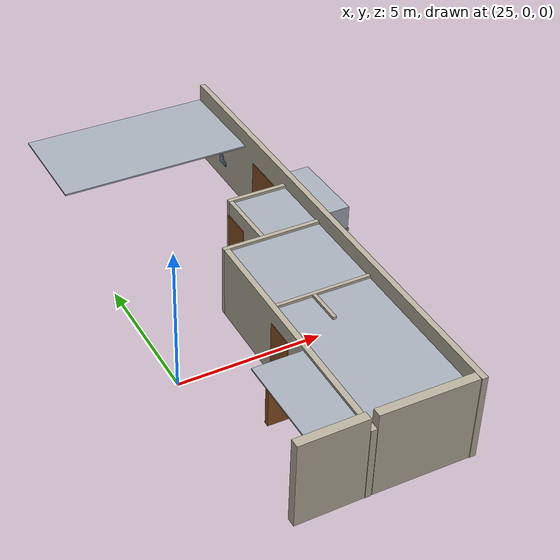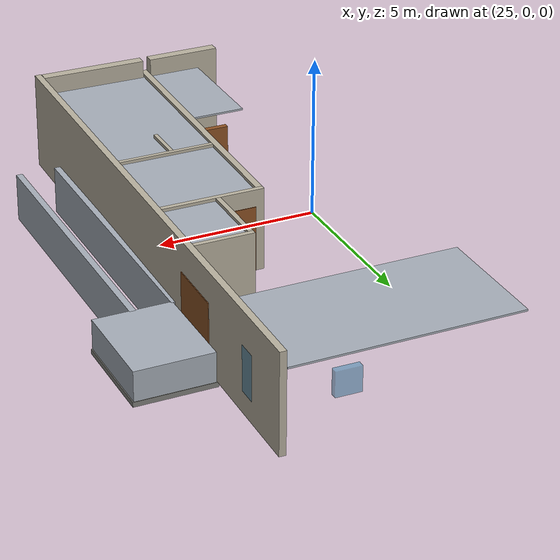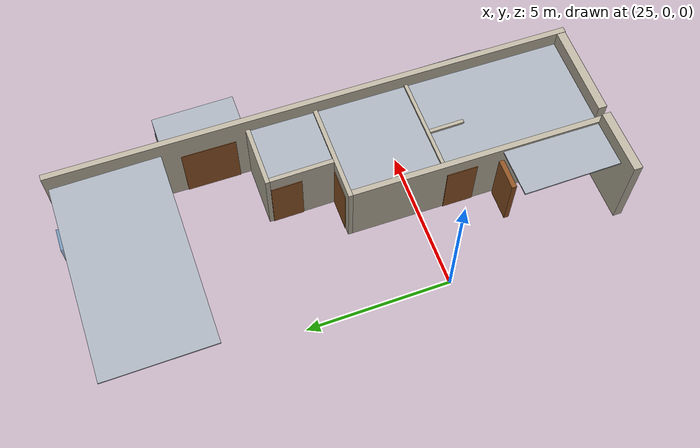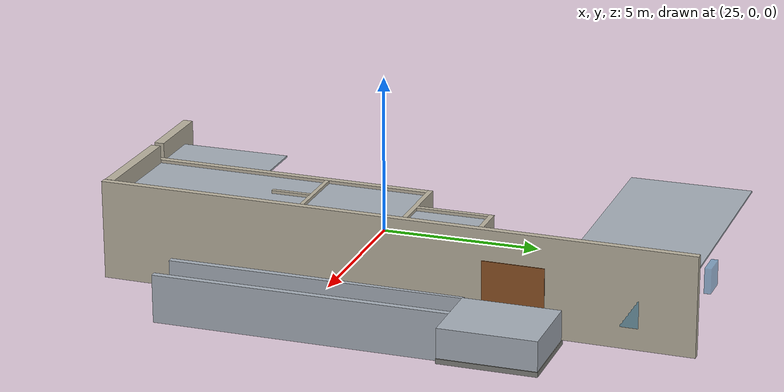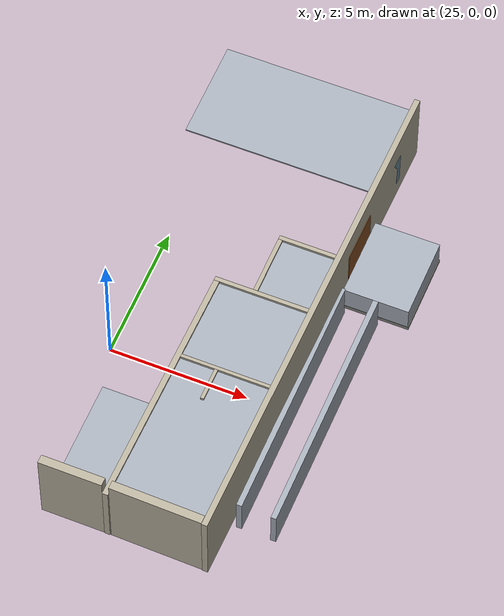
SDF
<sdf version="1.10">
 <world name="deltaseek_ifc_nominal">
  <model name="ifc_0KvanlNQrCphrCb4tAxkcE_f5de6fd0">
   <static>true</static>
   <pose>29.2424068 -1.41828877 1.2954 0 0 -1.57079633</pose>
   <link name="link">
    <collision name="collision">
     <geometry><box><size>1.20552254 0.123825 2.5908</size></box></geometry>
    </collision>
    <visual name="visual">
     <geometry><box><size>1.20552254 0.123825 2.5908</size></box></geometry>
     <material><ambient>0.72 0.69 0.62 1</ambient><diffuse>0.72 0.69 0.62 1</diffuse></material>
    </visual>
   </link>
  </model>
  <model name="ifc_0KvanlNQrCphrCb4tAxkex_9aa0b3fa">
   <static>true</static>
   <pose>29.5995059 -0.753615004 1.2954 0 0 3.14159265</pose>
   <link name="link">
    <collision name="collision">
     <geometry><box><size>3.28183331 0.123825 2.5908</size></box></geometry>
    </collision>
    <visual name="visual">
     <geometry><box><size>3.28183331 0.123825 2.5908</size></box></geometry>
     <material><ambient>0.72 0.69 0.62 1</ambient><diffuse>0.72 0.69 0.62 1</diffuse></material>
    </visual>
   </link>
  </model>
  <model name="ifc_0kOqgiFir1OwD68J2JXw_l_5ae3c16f">
   <static>true</static>
   <pose>31.4405101 6.19787652 1.0541 0 0 -1.58508899</pose>
   <link name="link">
    <collision name="collision"><geometry><box><size>1.8796 0.254 2.1082</size></box></geometry></collision>
    <visual name="visual">
     <geometry><box><size>1.8796 0.254 2.1082</size></box></geometry>
     <material><ambient>0.55 0.32 0.14 1</ambient><diffuse>0.55 0.32 0.14 1</diffuse></material>
    </visual>
   </link>
  </model>
  <model name="ifc_1abtvTofT8EB1v01F0DkHX_207af4a1">
   <static>true</static>
   <pose>29.2438592 3.64010209 1.2954 0 0 -1.57079633</pose>
   <link name="link">
    <collision name="collision"><geometry><box><size>2.19075 0.1524 2.5908</size></box></geometry></collision>
    <visual name="visual">
     <geometry><box><size>2.19075 0.1524 2.5908</size></box></geometry>
     <material><ambient>0.72 0.69 0.62 1</ambient><diffuse>0.72 0.69 0.62 1</diffuse></material>
    </visual>
   </link>
  </model>
  <model name="ifc_1abtvTofT8EB1v01F0DkJJ_802a1425">
   <static>true</static>
   <pose>29.5462416 2.46852709 1.2954 0 0 3.14159265</pose>
   <link name="link">
    <collision name="collision"><geometry><box><size>3.4808827 0.1524 2.5908</size></box></geometry></collision>
    <visual name="visual">
     <geometry><box><size>3.4808827 0.1524 2.5908</size></box></geometry>
     <material><ambient>0.72 0.69 0.62 1</ambient><diffuse>0.72 0.69 0.62 1</diffuse></material>
    </visual>
   </link>
  </model>
  <model name="ifc_1abtvTofT8EB1v01F0DkNK_24d141d2">
   <static>true</static>
   <pose>27.8371729 -2.07509683 1.2954 0 0 -1.58651771</pose>
   <link name="link">
    <collision name="collision"><geometry><box><size>8.93914698 0.2032 2.5908</size></box></geometry></collision>
    <visual name="visual">
     <geometry><box><size>8.93914698 0.2032 2.5908</size></box></geometry>
     <material><ambient>0.72 0.69 0.62 1</ambient><diffuse>0.72 0.69 0.62 1</diffuse></material>
    </visual>
   </link>
  </model>
  <model name="ifc_1abtvTofT8EB1v01F0Dkl5_f337d52f">
   <static>true</static>
   <pose>30.2439171 4.81167709 1.2954 0 0 3.14159265</pose>
   <link name="link">
    <collision name="collision"><geometry><box><size>2.1525158 0.1524 2.5908</size></box></geometry></collision>
    <visual name="visual">
     <geometry><box><size>2.1525158 0.1524 2.5908</size></box></geometry>
     <material><ambient>0.72 0.69 0.62 1</ambient><diffuse>0.72 0.69 0.62 1</diffuse></material>
    </visual>
   </link>
  </model>
  <model name="ifc_1ccFJmoz1FOhtUmg41tu3g_a9d314e3">
   <static>true</static>
   <pose>32.7593622 6.18329503 0.4572 0 0 0</pose>
   <link name="link">
    <collision name="collision">
     <geometry><box><size>2.3627067 2.9602113 0.9144</size></box></geometry>
    </collision>
    <visual name="visual">
     <geometry><box><size>2.3627067 2.9602113 0.9144</size></box></geometry>
     <material><ambient>0.65 0.68 0.72 1</ambient><diffuse>0.65 0.68 0.72 1</diffuse></material>
    </visual>
   </link>
  </model>
  <model name="ifc_1pMTU_U0n8Z8G77fSA9Y8b_2ce42bdc">
   <static>true</static>
   <pose>32.7463967 6.18769978 -0.0762 0 0 0</pose>
   <link name="link">
    <collision name="collision">
     <geometry><box><size>2.45154405 2.98738061 0.1524</size></box></geometry>
    </collision>
    <visual name="visual">
     <geometry><box><size>2.45154405 2.98738061 0.1524</size></box></geometry>
     <material><ambient>0.5 0.5 0.48 1</ambient><diffuse>0.5 0.5 0.48 1</diffuse></material>
    </visual>
   </link>
  </model>
  <model name="ifc_1pMTU_U0n8Z8G77fSA9Y_k_e8f20915">
   <static>true</static>
   <pose>29.7009786 11.498826 1.7272 0 0 -0.014292658</pose>
   <link name="link">
    <collision name="collision"><geometry><box><size>0.762 0.2032 0.762</size></box></geometry></collision>
    <visual name="visual">
     <geometry><box><size>0.762 0.2032 0.762</size></box></geometry>
     <material><ambient>0.25 0.55 0.72 0.55</ambient><diffuse>0.25 0.55 0.72 0.55</diffuse></material>
    </visual>
   </link>
  </model>
  <model name="ifc_1s7WttW8LF3wo3GFHzG7GH_e8636011">
   <static>true</static>
   <pose>27.9268264 9.61500092 2.466975 0 0 0</pose>
   <link name="link">
    <collision name="collision">
     <geometry><box><size>6.8518295 3.713085 0.05715</size></box></geometry>
    </collision>
    <visual name="visual">
     <geometry><box><size>6.8518295 3.713085 0.05715</size></box></geometry>
     <material><ambient>0.65 0.68 0.72 1</ambient><diffuse>0.65 0.68 0.72 1</diffuse></material>
    </visual>
   </link>
  </model>
  <model name="ifc_1s7WttW8LF3wo3GFHzG7GP_b442ee7a">
   <static>true</static>
   <pose>30.319028 3.64010209 2.466975 0 0 0</pose>
   <link name="link">
    <collision name="collision">
     <geometry><box><size>1.99793745 2.19075 0.05715</size></box></geometry>
    </collision>
    <visual name="visual">
     <geometry><box><size>1.99793745 2.19075 0.05715</size></box></geometry>
     <material><ambient>0.65 0.68 0.72 1</ambient><diffuse>0.65 0.68 0.72 1</diffuse></material>
    </visual>
   </link>
  </model>
  <model name="ifc_1s7WttW8LF3wo3GFHzG7Gu_24b27ac2">
   <static>true</static>
   <pose>29.6225203 0.850312292 2.466975 0 0 0</pose>
   <link name="link">
    <collision name="collision">
     <geometry><box><size>3.32396843 3.08402959 0.05715</size></box></geometry>
    </collision>
    <visual name="visual">
     <geometry><box><size>3.32396843 3.08402959 0.05715</size></box></geometry>
     <material><ambient>0.65 0.68 0.72 1</ambient><diffuse>0.65 0.68 0.72 1</diffuse></material>
    </visual>
   </link>
  </model>
  <model name="ifc_1s7WttW8LF3wo3GFHzG7l0_04b85284">
   <static>true</static>
   <pose>29.5561275 -3.54405607 2.466975 0 0 0</pose>
   <link name="link">
    <collision name="collision">
     <geometry><box><size>3.36505038 5.45705713 0.05715</size></box></geometry>
    </collision>
    <visual name="visual">
     <geometry><box><size>3.36505038 5.45705713 0.05715</size></box></geometry>
     <material><ambient>0.65 0.68 0.72 1</ambient><diffuse>0.65 0.68 0.72 1</diffuse></material>
    </visual>
   </link>
  </model>
  <model name="ifc_1s7WttW8LF3wo3GFHzG7lC_5ec75308">
   <static>true</static>
   <pose>26.8827676 -4.51416297 2.466975 0 0 0</pose>
   <link name="link">
    <collision name="collision">
     <geometry><box><size>1.68172512 3.41344323 0.05715</size></box></geometry>
    </collision>
    <visual name="visual">
     <geometry><box><size>1.68172512 3.41344323 0.05715</size></box></geometry>
     <material><ambient>0.65 0.68 0.72 1</ambient><diffuse>0.65 0.68 0.72 1</diffuse></material>
    </visual>
   </link>
  </model>
  <model name="ifc_2ASREFGDX0cRYE_pE9Hnt0_a697091a">
   <static>true</static>
   <pose>31.5347796 0.185771464 0.169596877 0 0 0</pose>
   <link name="link">
    <collision name="collision">
     <geometry><box><size>0.194544113 9.14366861 1.48960625</size></box></geometry>
    </collision>
    <visual name="visual">
     <geometry><box><size>0.194544113 9.14366861 1.48960625</size></box></geometry>
     <material><ambient>0.65 0.68 0.72 1</ambient><diffuse>0.65 0.68 0.72 1</diffuse></material>
    </visual>
   </link>
  </model>
  <model name="ifc_2ASREFGDX0cRYE_pE9Hnt4_7c84c0c7">
   <static>true</static>
   <pose>32.7538289 0.166604745 0.169596877 0 0 0</pose>
   <link name="link">
    <collision name="collision">
     <geometry><box><size>0.194544113 9.14366861 1.48960625</size></box></geometry>
    </collision>
    <visual name="visual">
     <geometry><box><size>0.194544113 9.14366861 1.48960625</size></box></geometry>
     <material><ambient>0.65 0.68 0.72 1</ambient><diffuse>0.65 0.68 0.72 1</diffuse></material>
    </visual>
   </link>
  </model>
  <model name="ifc_38qgW_sXr868lESAj2QWIX_e740fb8f">
   <static>true</static>
   <pose>26.5333102 -6.37328459 1.524 0 0 0</pose>
   <link name="link">
    <collision name="collision"><geometry><box><size>2.25187173 0.3048 3.048</size></box></geometry></collision>
    <visual name="visual">
     <geometry><box><size>2.25187173 0.3048 3.048</size></box></geometry>
     <material><ambient>0.72 0.69 0.62 1</ambient><diffuse>0.72 0.69 0.62 1</diffuse></material>
    </visual>
   </link>
  </model>
  <model name="ifc_38qgW_sXr868lESAj2QWZy_0fad9336">
   <static>true</static>
   <pose>28.6088592 2.46852709 1.0287 0 0 3.14159265</pose>
   <link name="link">
    <collision name="collision"><geometry><box><size>1.0668 0.2032 2.0574</size></box></geometry></collision>
    <visual name="visual">
     <geometry><box><size>1.0668 0.2032 2.0574</size></box></geometry>
     <material><ambient>0.55 0.32 0.14 1</ambient><diffuse>0.55 0.32 0.14 1</diffuse></material>
    </visual>
   </link>
  </model>
  <model name="ifc_38qgW_sXr868lESAj2QWdb_45beef27">
   <static>true</static>
   <pose>29.2438592 4.20207709 1.0287 0 0 -1.57079633</pose>
   <link name="link">
    <collision name="collision"><geometry><box><size>1.0668 0.2032 2.0574</size></box></geometry></collision>
    <visual name="visual">
     <geometry><box><size>1.0668 0.2032 2.0574</size></box></geometry>
     <material><ambient>0.55 0.32 0.14 1</ambient><diffuse>0.55 0.32 0.14 1</diffuse></material>
    </visual>
   </link>
  </model>
  <model name="ifc_38qgW_sXr868lESAj2QWsq_35dbae26">
   <static>true</static>
   <pose>29.5249664 -6.39928612 1.524 0 0 -0.015721382</pose>
   <link name="link">
    <collision name="collision"><geometry><box><size>3.2512 0.3048 3.048</size></box></geometry></collision>
    <visual name="visual">
     <geometry><box><size>3.2512 0.3048 3.048</size></box></geometry>
     <material><ambient>0.72 0.69 0.62 1</ambient><diffuse>0.72 0.69 0.62 1</diffuse></material>
    </visual>
   </link>
  </model>
  <model name="ifc_38qgW_sXr868lESAj2QWuI_b51901da">
   <static>true</static>
   <pose>27.8475679 -1.41395047 1.0287 0 0 -1.58651771</pose>
   <link name="link">
    <collision name="collision"><geometry><box><size>1.0668 0.254 2.0574</size></box></geometry></collision>
    <visual name="visual">
     <geometry><box><size>1.0668 0.254 2.0574</size></box></geometry>
     <material><ambient>0.55 0.32 0.14 1</ambient><diffuse>0.55 0.32 0.14 1</diffuse></material>
    </visual>
   </link>
  </model>
  <model name="ifc_38qgW_sXr868lESAj2QZNR_9590338d">
   <static>true</static>
   <pose>27.1296221 -2.76262303 1.0287 0 0 3.12587127</pose>
   <link name="link">
    <collision name="collision"><geometry><box><size>1.0668 0.174625 2.0574</size></box></geometry></collision>
    <visual name="visual">
     <geometry><box><size>1.0668 0.174625 2.0574</size></box></geometry>
     <material><ambient>0.55 0.32 0.14 1</ambient><diffuse>0.55 0.32 0.14 1</diffuse></material>
    </visual>
   </link>
  </model>
  <model name="ifc_3_ZduKFZv0NPDqgIQEKqbf_f6c585d4">
   <static>true</static>
   <pose>31.4890455 9.59347599 1.33985 0 0 -1.58508899</pose>
   <link name="link">
    <collision name="collision"><geometry><box><size>0.6096 0.2032 1.3716</size></box></geometry></collision>
    <visual name="visual">
     <geometry><box><size>0.6096 0.2032 1.3716</size></box></geometry>
     <material><ambient>0.25 0.55 0.72 0.55</ambient><diffuse>0.25 0.55 0.72 0.55</diffuse></material>
    </visual>
   </link>
  </model>
  <model name="ifc_3qo_AKI5r02OFVkPm_OvPR_bf9f12d6">
   <static>true</static>
   <pose>30.5659849 1.66316435 1.057275 0 0 1.55650367</pose>
   <link name="link">
    <collision name="collision"><geometry><box><size>1.50495 1.49225 2.11455</size></box></geometry></collision>
    <visual name="visual">
     <geometry><box><size>1.50495 1.49225 2.11455</size></box></geometry>
     <material><ambient>0.65 0.68 0.72 1</ambient><diffuse>0.65 0.68 0.72 1</diffuse></material>
    </visual>
   </link>
  </model>
  <model name="ifc_3qo_AKI5r02OFVkPm_OwZW_ab3525b9">
   <static>true</static>
   <pose>30.4634305 -5.51166252 1.057275 0 0 -1.58508899</pose>
   <link name="link">
    <collision name="collision"><geometry><box><size>1.50495 1.49225 2.11455</size></box></geometry></collision>
    <visual name="visual">
     <geometry><box><size>1.50495 1.49225 2.11455</size></box></geometry>
     <material><ambient>0.65 0.68 0.72 1</ambient><diffuse>0.65 0.68 0.72 1</diffuse></material>
    </visual>
   </link>
  </model>
  <model name="ifc_3qo_AKI5r02OFVkPm_Owps_9fc12248">
   <static>true</static>
   <pose>30.4801922 -4.33899659 1.057275 0 0 -1.58508899</pose>
   <link name="link">
    <collision name="collision"><geometry><box><size>0.84455 1.49225 2.11455</size></box></geometry></collision>
    <visual name="visual">
     <geometry><box><size>0.84455 1.49225 2.11455</size></box></geometry>
     <material><ambient>0.65 0.68 0.72 1</ambient><diffuse>0.65 0.68 0.72 1</diffuse></material>
    </visual>
   </link>
  </model>
  <model name="ifc_3qo_AKI5r02OFVkPm_Owqu_a08811a2">
   <static>true</static>
   <pose>30.492211 -3.49814278 1.057275 0 0 -1.58508899</pose>
   <link name="link">
    <collision name="collision"><geometry><box><size>0.84455 1.49225 2.11455</size></box></geometry></collision>
    <visual name="visual">
     <geometry><box><size>0.84455 1.49225 2.11455</size></box></geometry>
     <material><ambient>0.65 0.68 0.72 1</ambient><diffuse>0.65 0.68 0.72 1</diffuse></material>
    </visual>
   </link>
  </model>
  <model name="ifc_3qo_AKI5r02OFVkPm_Owxi_977f37b8">
   <static>true</static>
   <pose>30.5384412 -0.263826389 1.057275 0 0 -1.58508899</pose>
   <link name="link">
    <collision name="collision"><geometry><box><size>0.84455 1.49225 2.11455</size></box></geometry></collision>
    <visual name="visual">
     <geometry><box><size>0.84455 1.49225 2.11455</size></box></geometry>
     <material><ambient>0.65 0.68 0.72 1</ambient><diffuse>0.65 0.68 0.72 1</diffuse></material>
    </visual>
   </link>
  </model>
  <model name="ifc_3qo_AKI5r02OFVkPm_Owzm_fd8d224e">
   <static>true</static>
   <pose>30.549318 0.497132182 1.057275 0 0 -1.58508899</pose>
   <link name="link">
    <collision name="collision"><geometry><box><size>0.84455 1.49225 2.11455</size></box></geometry></collision>
    <visual name="visual">
     <geometry><box><size>0.84455 1.49225 2.11455</size></box></geometry>
     <material><ambient>0.65 0.68 0.72 1</ambient><diffuse>0.65 0.68 0.72 1</diffuse></material>
    </visual>
   </link>
  </model>
  <model name="ifc_3qo_AKI5r02OFVkPm_Ox26_e697a8b4">
   <static>true</static>
   <pose>30.9978167 -1.66993401 0.889 0 0 1.55650367</pose>
   <link name="link">
    <collision name="collision"><geometry><box><size>0.0254 0.4572 1.0668</size></box></geometry></collision>
    <visual name="visual">
     <geometry><box><size>0.0254 0.4572 1.0668</size></box></geometry>
     <material><ambient>0.65 0.68 0.72 1</ambient><diffuse>0.65 0.68 0.72 1</diffuse></material>
    </visual>
   </link>
  </model>
  <model name="ifc_3qo_AKI5r02OFVkPm_Oxz7_719ed55c">
   <static>true</static>
   <pose>30.9865366 -2.45910592 0.889 0 0 1.55650367</pose>
   <link name="link">
    <collision name="collision"><geometry><box><size>0.0254 0.4572 1.0668</size></box></geometry></collision>
    <visual name="visual">
     <geometry><box><size>0.0254 0.4572 1.0668</size></box></geometry>
     <material><ambient>0.65 0.68 0.72 1</ambient><diffuse>0.65 0.68 0.72 1</diffuse></material>
    </visual>
   </link>
  </model>
  <model name="ifc_3xoURert943RLFHAzdmQ77_1f404945">
   <static>true</static>
   <pose>31.3874776 2.48766377 1.524 0 0 -1.58508899</pose>
   <link name="link">
    <collision name="collision"><geometry><box><size>18.1754761 0.2032 3.048</size></box></geometry></collision>
    <visual name="visual">
     <geometry><box><size>18.1754761 0.2032 3.048</size></box></geometry>
     <material><ambient>0.72 0.69 0.62 1</ambient><diffuse>0.72 0.69 0.62 1</diffuse></material>
    </visual>
   </link>
  </model>
 </world>
</sdf>
